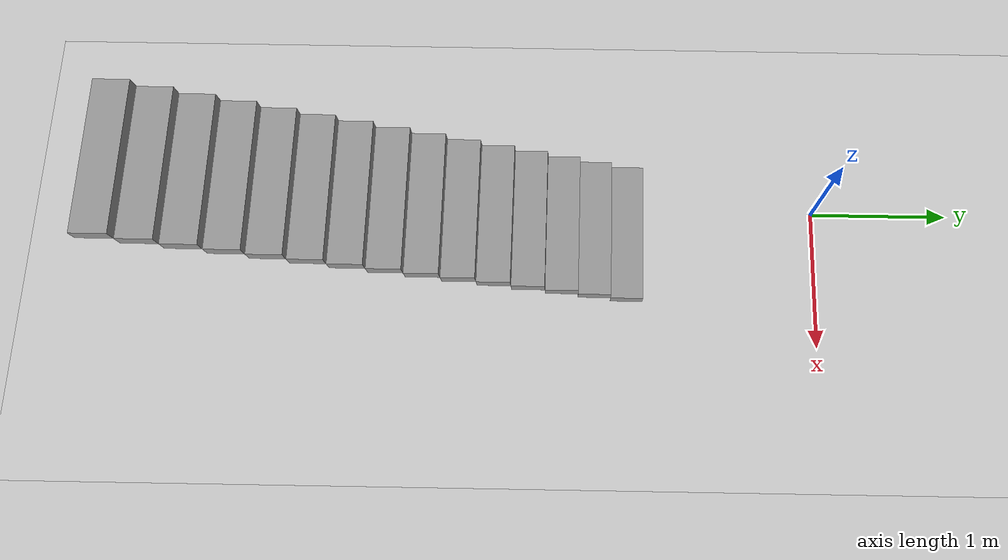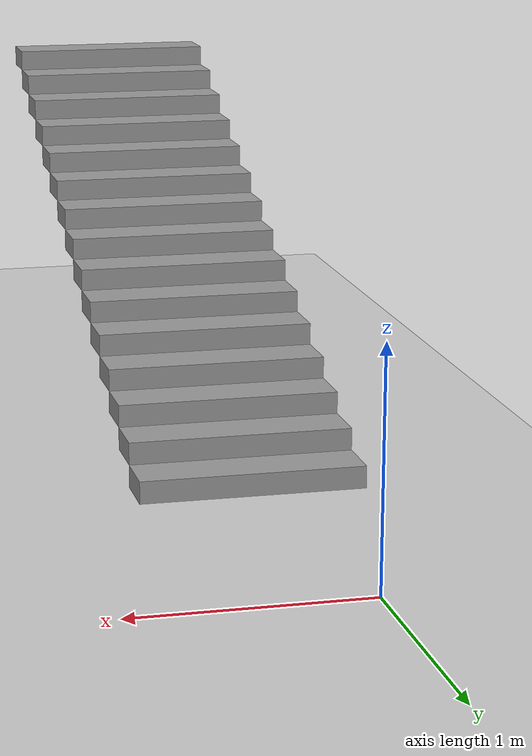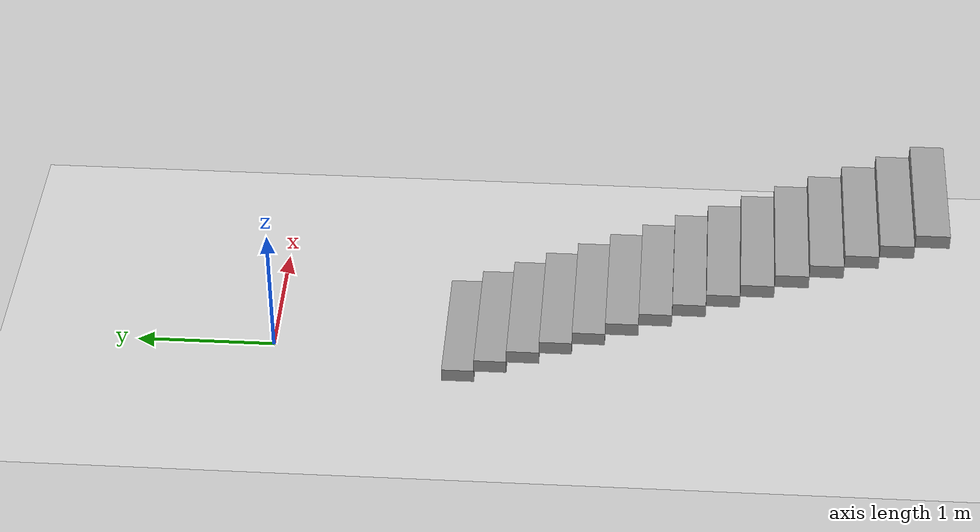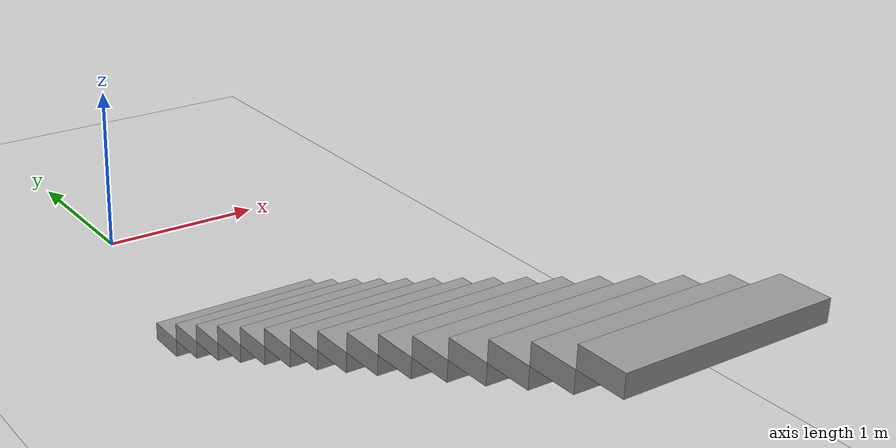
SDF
<sdf version="1.7">
 <world name="default">
  <light name="sun" type="directional">
   <pose>0 0 10 0 -0 0</pose>
   <diffuse>0.8 0.8 0.8 1</diffuse>
   <specular>0.2 0.2 0.2 1</specular>
   <attenuation>
    <range>1000</range>
    <constant>0.9</constant>
    <linear>0.01</linear>
    <quadratic>0.001</quadratic>
   </attenuation>
   <direction>-0.5 0.1 -0.9</direction>
   <spot><inner_angle>0</inner_angle><outer_angle>0</outer_angle><falloff>0</falloff></spot>
  </light>
  <model name="ground_plane">
   <static>1</static>
   <link name="link">
    <collision name="collision">
     <geometry><plane><normal>0 0 1</normal><size>100 100</size></plane></geometry>
     <surface>
      <contact><collide_bitmask>65535</collide_bitmask></contact>
      <friction><ode><mu>100</mu><mu2>50</mu2></ode></friction>
     </surface>
    </collision>
    <visual name="visual">
     <cast_shadows>0</cast_shadows>
     <geometry><plane><normal>0 0 1</normal><size>100 100</size></plane></geometry>
     <material>
      <script><uri>file://media/materials/scripts/gazebo.material</uri><name>Gazebo/Grey</name></script>
     </material>
    </visual>
   </link>
  </model>
  <gravity>0 0 -9.8</gravity>
  <magnetic_field>6e-06 2.3e-05 -4.2e-05</magnetic_field>
  <atmosphere type="adiabatic"/>
  <physics type="ode">
   <max_step_size>0.001</max_step_size>
   <real_time_factor>1</real_time_factor>
   <real_time_update_rate>1000</real_time_update_rate>
  </physics>
  <scene><ambient>0.4 0.4 0.4 1</ambient><background>0.7 0.7 0.7 1</background><shadows>1</shadows></scene>
  <spherical_coordinates>
   <surface_model>EARTH_WGS84</surface_model>
   <latitude_deg>0</latitude_deg>
   <longitude_deg>0</longitude_deg>
   <elevation>0</elevation>
   <heading_deg>0</heading_deg>
  </spherical_coordinates>
  <model name="Untitled">
   <pose>0.18 -2.375 0 0 -0 0</pose>
   <link name="Stairs_1">
    <visual name="Stairs_1_Visual_0">
     <pose>0 1.00833 0.05 0 -0 0</pose>
     <geometry><box><size>1 0.233333 0.1</size></box></geometry>
     <material>
      <script><uri>file://media/materials/scripts/gazebo.material</uri><name>Gazebo/Grey</name></script>
      <ambient>1 1 1 1</ambient>
     </material>
     <meta><layer>0</layer></meta>
    </visual>
    <collision name="Stairs_1_Collision_0">
     <geometry><box><size>1 0.233333 0.1</size></box></geometry>
     <pose>0 1.00833 0.05 0 -0 0</pose>
    </collision>
    <visual name="Stairs_1_Visual_1">
     <pose>0 0.775 0.15 0 -0 0</pose>
     <geometry><box><size>1 0.233333 0.1</size></box></geometry>
     <material>
      <script><uri>file://media/materials/scripts/gazebo.material</uri><name>Gazebo/Grey</name></script>
      <ambient>1 1 1 1</ambient>
     </material>
     <meta><layer>0</layer></meta>
    </visual>
    <collision name="Stairs_1_Collision_1">
     <geometry><box><size>1 0.233333 0.1</size></box></geometry>
     <pose>0 0.775 0.15 0 -0 0</pose>
    </collision>
    <visual name="Stairs_1_Visual_2">
     <pose>0 0.541667 0.25 0 -0 0</pose>
     <geometry><box><size>1 0.233333 0.1</size></box></geometry>
     <material>
      <script><uri>file://media/materials/scripts/gazebo.material</uri><name>Gazebo/Grey</name></script>
      <ambient>1 1 1 1</ambient>
     </material>
     <meta><layer>0</layer></meta>
    </visual>
    <collision name="Stairs_1_Collision_2">
     <geometry><box><size>1 0.233333 0.1</size></box></geometry>
     <pose>0 0.541667 0.25 0 -0 0</pose>
    </collision>
    <visual name="Stairs_1_Visual_3">
     <pose>0 0.308333 0.35 0 -0 0</pose>
     <geometry><box><size>1 0.233333 0.1</size></box></geometry>
     <material>
      <script><uri>file://media/materials/scripts/gazebo.material</uri><name>Gazebo/Grey</name></script>
      <ambient>1 1 1 1</ambient>
     </material>
     <meta><layer>0</layer></meta>
    </visual>
    <collision name="Stairs_1_Collision_3">
     <geometry><box><size>1 0.233333 0.1</size></box></geometry>
     <pose>0 0.308333 0.35 0 -0 0</pose>
    </collision>
    <visual name="Stairs_1_Visual_4">
     <pose>0 0.075 0.45 0 -0 0</pose>
     <geometry><box><size>1 0.233333 0.1</size></box></geometry>
     <material>
      <script><uri>file://media/materials/scripts/gazebo.material</uri><name>Gazebo/Grey</name></script>
      <ambient>1 1 1 1</ambient>
     </material>
     <meta><layer>0</layer></meta>
    </visual>
    <collision name="Stairs_1_Collision_4">
     <geometry><box><size>1 0.233333 0.1</size></box></geometry>
     <pose>0 0.075 0.45 0 -0 0</pose>
    </collision>
    <visual name="Stairs_1_Visual_5">
     <pose>0 -0.158333 0.55 0 -0 0</pose>
     <geometry><box><size>1 0.233333 0.1</size></box></geometry>
     <material>
      <script><uri>file://media/materials/scripts/gazebo.material</uri><name>Gazebo/Grey</name></script>
      <ambient>1 1 1 1</ambient>
     </material>
     <meta><layer>0</layer></meta>
    </visual>
    <collision name="Stairs_1_Collision_5">
     <geometry><box><size>1 0.233333 0.1</size></box></geometry>
     <pose>0 -0.158333 0.55 0 -0 0</pose>
    </collision>
    <visual name="Stairs_1_Visual_6">
     <pose>0 -0.391667 0.65 0 -0 0</pose>
     <geometry><box><size>1 0.233333 0.1</size></box></geometry>
     <material>
      <script><uri>file://media/materials/scripts/gazebo.material</uri><name>Gazebo/Grey</name></script>
      <ambient>1 1 1 1</ambient>
     </material>
     <meta><layer>0</layer></meta>
    </visual>
    <collision name="Stairs_1_Collision_6">
     <geometry><box><size>1 0.233333 0.1</size></box></geometry>
     <pose>0 -0.391667 0.65 0 -0 0</pose>
    </collision>
    <visual name="Stairs_1_Visual_7">
     <pose>0 -0.625 0.75 0 -0 0</pose>
     <geometry><box><size>1 0.233333 0.1</size></box></geometry>
     <material>
      <script><uri>file://media/materials/scripts/gazebo.material</uri><name>Gazebo/Grey</name></script>
      <ambient>1 1 1 1</ambient>
     </material>
     <meta><layer>0</layer></meta>
    </visual>
    <collision name="Stairs_1_Collision_7">
     <geometry><box><size>1 0.233333 0.1</size></box></geometry>
     <pose>0 -0.625 0.75 0 -0 0</pose>
    </collision>
    <visual name="Stairs_1_Visual_8">
     <pose>0 -0.858333 0.85 0 -0 0</pose>
     <geometry><box><size>1 0.233333 0.1</size></box></geometry>
     <material>
      <script><uri>file://media/materials/scripts/gazebo.material</uri><name>Gazebo/Grey</name></script>
      <ambient>1 1 1 1</ambient>
     </material>
     <meta><layer>0</layer></meta>
    </visual>
    <collision name="Stairs_1_Collision_8">
     <geometry><box><size>1 0.233333 0.1</size></box></geometry>
     <pose>0 -0.858333 0.85 0 -0 0</pose>
    </collision>
    <visual name="Stairs_1_Visual_9">
     <pose>0 -1.09167 0.95 0 -0 0</pose>
     <geometry><box><size>1 0.233333 0.1</size></box></geometry>
     <material>
      <script><uri>file://media/materials/scripts/gazebo.material</uri><name>Gazebo/Grey</name></script>
      <ambient>1 1 1 1</ambient>
     </material>
     <meta><layer>0</layer></meta>
    </visual>
    <collision name="Stairs_1_Collision_9">
     <geometry><box><size>1 0.233333 0.1</size></box></geometry>
     <pose>0 -1.09167 0.95 0 -0 0</pose>
    </collision>
    <visual name="Stairs_1_Visual_10">
     <pose>0 -1.325 1.05 0 -0 0</pose>
     <geometry><box><size>1 0.233333 0.1</size></box></geometry>
     <material>
      <script><uri>file://media/materials/scripts/gazebo.material</uri><name>Gazebo/Grey</name></script>
      <ambient>1 1 1 1</ambient>
     </material>
     <meta><layer>0</layer></meta>
    </visual>
    <collision name="Stairs_1_Collision_10">
     <geometry><box><size>1 0.233333 0.1</size></box></geometry>
     <pose>0 -1.325 1.05 0 -0 0</pose>
    </collision>
    <visual name="Stairs_1_Visual_11">
     <pose>0 -1.55833 1.15 0 -0 0</pose>
     <geometry><box><size>1 0.233333 0.1</size></box></geometry>
     <material>
      <script><uri>file://media/materials/scripts/gazebo.material</uri><name>Gazebo/Grey</name></script>
      <ambient>1 1 1 1</ambient>
     </material>
     <meta><layer>0</layer></meta>
    </visual>
    <collision name="Stairs_1_Collision_11">
     <geometry><box><size>1 0.233333 0.1</size></box></geometry>
     <pose>0 -1.55833 1.15 0 -0 0</pose>
    </collision>
    <visual name="Stairs_1_Visual_12">
     <pose>0 -1.79167 1.25 0 -0 0</pose>
     <geometry><box><size>1 0.233333 0.1</size></box></geometry>
     <material>
      <script><uri>file://media/materials/scripts/gazebo.material</uri><name>Gazebo/Grey</name></script>
      <ambient>1 1 1 1</ambient>
     </material>
     <meta><layer>0</layer></meta>
    </visual>
    <collision name="Stairs_1_Collision_12">
     <geometry><box><size>1 0.233333 0.1</size></box></geometry>
     <pose>0 -1.79167 1.25 0 -0 0</pose>
    </collision>
    <visual name="Stairs_1_Visual_13">
     <pose>0 -2.025 1.35 0 -0 0</pose>
     <geometry><box><size>1 0.233333 0.1</size></box></geometry>
     <material>
      <script><uri>file://media/materials/scripts/gazebo.material</uri><name>Gazebo/Grey</name></script>
      <ambient>1 1 1 1</ambient>
     </material>
     <meta><layer>0</layer></meta>
    </visual>
    <collision name="Stairs_1_Collision_13">
     <geometry><box><size>1 0.233333 0.1</size></box></geometry>
     <pose>0 -2.025 1.35 0 -0 0</pose>
    </collision>
    <visual name="Stairs_1_Visual_14">
     <pose>0 -2.25833 1.45 0 -0 0</pose>
     <geometry><box><size>1 0.233333 0.1</size></box></geometry>
     <material>
      <script><uri>file://media/materials/scripts/gazebo.material</uri><name>Gazebo/Grey</name></script>
      <ambient>1 1 1 1</ambient>
     </material>
     <meta><layer>0</layer></meta>
    </visual>
    <collision name="Stairs_1_Collision_14">
     <geometry><box><size>1 0.233333 0.1</size></box></geometry>
     <pose>0 -2.25833 1.45 0 -0 0</pose>
    </collision>
   </link>
   <static>1</static>
  </model>
 </world>
</sdf>
